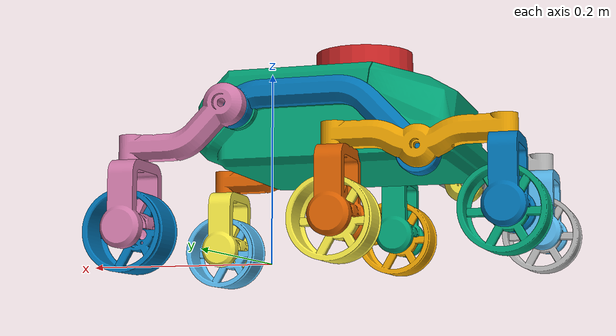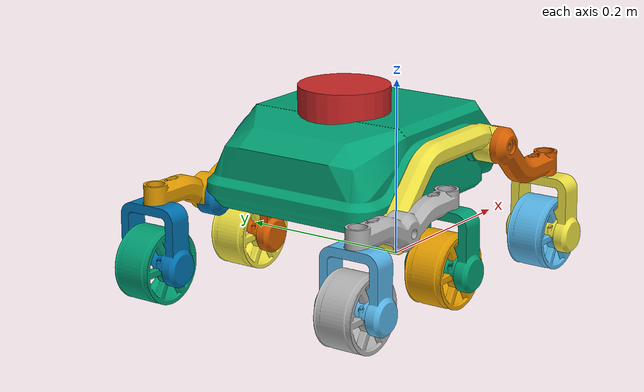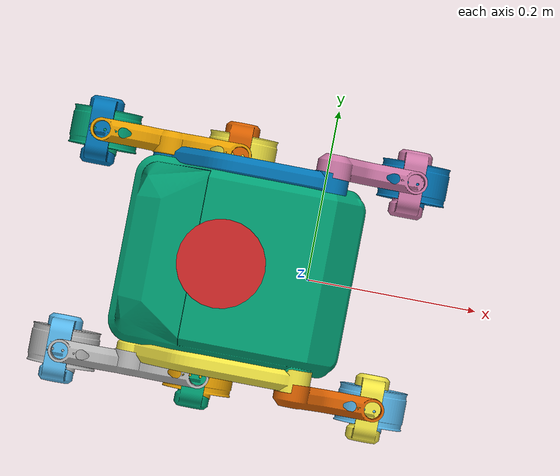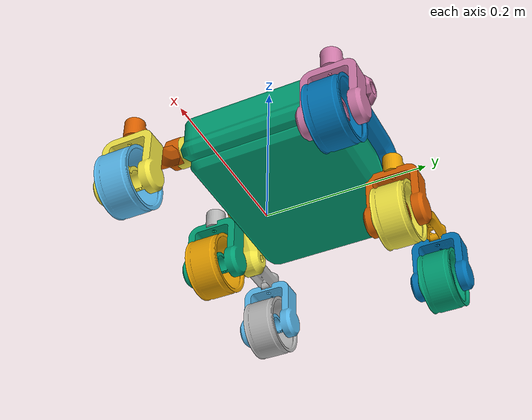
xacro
<?xml version="1.0"?>
<robot xmlns:xacro="http://www.ros.org/wiki/xacro" name="rover">

    <link name="base_link"></link>
    <link name="base_footprint"></link>
    <joint name="base_footprint_joint" type="fixed">
        <origin rpy="0 0 0" xyz="0 0 0"></origin>
        <parent link="base_link"></parent>
        <child link="base_footprint"></child>
    </joint>
    <link name="base_part_link">
        <inertial>
            <origin xyz="0.36858011704103055 0.12727195552741655 0.2893761824201176" rpy="0 0 0"/>
            <mass value="5.3148472840078265"/>
            <inertia ixx="0.035413" iyy="0.043631" izz="0.066908" ixy="0.000486" iyz="-0.000133" ixz="0.001263"/>
          </inertial>
        <visual>
            <origin rpy="0 0 0" xyz="0 0 0"/>
            <geometry>
                <mesh filename="package://rover_description/meshes/body_rover.stl" scale="0.001 0.001 0.001"></mesh>
            </geometry>
        </visual>
        <collision>
            <origin rpy="0 0 0" xyz="0 0 0.5"/>
            <geometry>
                <mesh filename="package://rover_description/meshes/body_rover.stl" scale="0.001 0.001 0.001"></mesh>
            </geometry>
        </collision>

    </link>

    <link name="left_leg_link">
        <inertial>
            <origin xyz="0.0940898084139219 0.012814069160764302 -0.012373797524457275" rpy="0 0 0"/>
            <mass value="0.6560655147003178"/>
            <inertia ixx="0.00059" iyy="0.004256" izz="0.003752" ixy="-2e-06" iyz="6e-06" ixz="0.001033"/>
          </inertial>
        <visual>
            <origin rpy="0 0 0" xyz="-0.261 -0.010 -0.120"></origin>
            <geometry>
                <mesh filename="package://rover_description/meshes/leg_1.stl" scale="0.001 0.001 0.001"></mesh>
            </geometry>
        </visual>
        <collision>
            <origin rpy="0 0 0" xyz="-0.261 -0.010 -0.120"></origin>
            <geometry>
                <mesh filename="package://rover_description/meshes/leg_1.stl" scale="0.001 0.001 0.001"></mesh>
            </geometry>
        </collision>
    </link>

    <link name="right_leg_link">
        <inertial>
            <origin xyz="0.09408981018832419 -0.012814870490642113 -0.012373814218106793" rpy="0 0 0"/>
            <mass value="0.6560656136558927"/>
            <inertia ixx="0.00059" iyy="0.004256" izz="0.003752" ixy="2e-06" iyz="-6e-06" ixz="0.001033"/>
          </inertial>
        <visual>
            <origin rpy="0 0 0" xyz="-0.261 -0.010 -0.120"></origin>
            <geometry>
                <mesh filename="package://rover_description/meshes/leg_1.stl" scale="0.001 -0.001 0.001"></mesh>
            </geometry>
        </visual>
        <collision>
            <origin rpy="0 0 0" xyz="-0.261 -0.010 -0.120"></origin>
            <geometry>
                <mesh filename="package://rover_description/meshes/leg_1.stl" scale="0.001 -0.001 0.001"></mesh>
            </geometry>
        </collision>
    </link>

    <link name="left_rocker_link">
        <inertial>
            <origin xyz="-0.06571336847368092 -0.013275152182515076 -0.055118178975015475" rpy="0 0 0"/>
            <mass value="0.8937260483050995"/>
            <inertia ixx="0.002073" iyy="0.003258" izz="0.001843" ixy="-2.3e-05" iyz="-7.1e-05" ixz="-0.001236"/>
        </inertial>
        <visual>
            <origin rpy="0 0 0" xyz="-0.220 0.025 -0.120"></origin>
            <geometry>
                <mesh filename="package://rover_description/meshes/rocker_1.stl" scale="0.001 0.001 0.001"></mesh>
            </geometry>
        </visual>
        <collision>
            <origin rpy="0 0 0" xyz="-0.220 0.025 -0.120"></origin>
            <geometry>
                <mesh filename="package://rover_description/meshes/rocker_1.stl" scale="0.001 0.001 0.001"></mesh>
            </geometry>
        </collision>
    </link>

    <link name="right_rocker_link">
        <inertial>
            <origin xyz="-0.0656809601110295 0.013042069644830123 -0.054335275342790645" rpy="0 0 0"/>
            <mass value="0.9511150507226518"/>
            <inertia ixx="0.002083" iyy="0.003269" izz="0.001848" ixy="1.6e-05" iyz="-3.7e-05" ixz="-0.001236"/>
          </inertial>
        <visual>
            <origin rpy="0 0 0" xyz="-0.220 -0.025 -0.120"></origin>
            <geometry>
                <mesh filename="package://rover_description/meshes/rocker_1.stl" scale="0.001 -0.001 0.001"></mesh>
            </geometry>
        </visual>
        <collision>
            <origin rpy="0 0 0" xyz="-0.220 -0.025 -0.120"></origin>
            <geometry>
                <mesh filename="package://rover_description/meshes/rocker_1.stl" scale="0.001 -0.001 0.001"></mesh>
            </geometry>
        </collision>
    </link>

    <link name="left_boogie_link">
        <inertial>
            <origin xyz="-2.773434771169425e-05 0.01378851335933029 -0.019093045660989794" rpy="0 0 0"/>
            <mass value="1.4914158227201482"/>
            <inertia ixx="0.002319" iyy="0.009171" izz="0.00813" ixy="-7e-06" iyz="-0.000106" ixz="6e-06"/>
          </inertial>
        <visual>
            <origin rpy="0 0 0" xyz="-0.080 0.000 -0.070"></origin>
            <geometry>
                <mesh filename="package://rover_description/meshes/boogie_1.stl" scale="0.001 0.001 0.001"></mesh>
            </geometry>
        </visual>
        <collision>
            <origin rpy="0 0 0" xyz="-0.080 0.000 -0.070"></origin>
            <geometry>
                <mesh filename="package://rover_description/meshes/boogie_1.stl" scale="0.001 0.001 0.001"></mesh>
            </geometry>
        </collision>
    </link>

    <link name="right_boogie_link">
        <inertial>
            <origin xyz="8.210657408652677e-05 -0.013101623219513326 -0.01912358611502865" rpy="0 0 0"/>
            <mass value="1.4914778130132003"/>
            <inertia ixx="0.00232" iyy="0.009173" izz="0.008131" ixy="0.0" iyz="-0.000101" ixz="-1e-06"/>
          </inertial>
        <visual>
            <origin rpy="0 0 0" xyz="-0.080 0.000 -0.070"></origin>
            <geometry>
                <mesh filename="package://rover_description/meshes/boogie_1.stl" scale="0.001 -0.001 0.001"></mesh>
            </geometry>
        </visual>
        <collision>
            <origin rpy="0 0 0" xyz="-0.080 0.000 -0.070"></origin>
            <geometry>
                <mesh filename="package://rover_description/meshes/boogie_1.stl" scale="0.001 -0.001 0.001"></mesh>
            </geometry>
        </collision>
    </link>

    <link name="u_joint_1_link">
        <inertial>
            <origin xyz="8.210657408652677e-05 -0.013101623219513326 -0.01912358611502865" rpy="0 0 0"/>
            <mass value="1.4914778130132003"/>
            <inertia ixx="0.00232" iyy="0.009173" izz="0.008131" ixy="0.0" iyz="-0.000101" ixz="-1e-06"/>
          </inertial>
        <visual>
            <origin rpy="0 0 0" xyz="-0.175 0.239 -0.110"></origin>
            <geometry>
                <mesh filename="package://rover_description/meshes/u_joint.stl" scale="0.001 0.001 0.001"></mesh>
            </geometry>
        </visual>
        <collision>
            <origin rpy="0 0 0" xyz="-0.175 0.239 -0.110"></origin>
            <geometry>
                <mesh filename="package://rover_description/meshes/u_joint.stl" scale="0.001 0.001 0.001"></mesh>
            </geometry>
        </collision>
    </link>

    <link name="u_joint_2_link">
        <inertial>
            <origin xyz="8.210657408652677e-05 -0.013101623219513326 -0.01912358611502865" rpy="0 0 0"/>
            <mass value="1.4914778130132003"/>
            <inertia ixx="0.00232" iyy="0.009173" izz="0.008131" ixy="0.0" iyz="-0.000101" ixz="-1e-06"/>
          </inertial>
        <visual>
            <origin rpy="0 0 0" xyz="-0.175 0.239 -0.110"></origin>
            <geometry>
                <mesh filename="package://rover_description/meshes/u_joint.stl" scale="0.001 0.001 0.001"></mesh>
            </geometry>
        </visual>
        <collision>
            <origin rpy="0 0 0" xyz="-0.175 0.239 -0.110"></origin>
            <geometry>
                <mesh filename="package://rover_description/meshes/u_joint.stl" scale="0.001 0.001 0.001"></mesh>
            </geometry>
        </collision>
    </link>

    <link name="u_joint_3_link">
        <inertial>
            <origin xyz="8.210657408652677e-05 -0.013101623219513326 -0.01912358611502865" rpy="0 0 0"/>
            <mass value="1.4914778130132003"/>
            <inertia ixx="0.00232" iyy="0.009173" izz="0.008131" ixy="0.0" iyz="-0.000101" ixz="-1e-06"/>
          </inertial>
        <visual>
            <origin rpy="0 0 0" xyz="-0.175 0.239 -0.110"></origin>
            <geometry>
                <mesh filename="package://rover_description/meshes/u_joint.stl" scale="0.001 0.001 0.001"></mesh>
            </geometry>
        </visual>
        <collision>
            <origin rpy="0 0 0" xyz="-0.175 0.239 -0.110"></origin>
            <geometry>
                <mesh filename="package://rover_description/meshes/u_joint.stl" scale="0.001 0.001 0.001"></mesh>
            </geometry>
        </collision>
    </link>

    <link name="u_joint_4_link">
        <inertial>
            <origin xyz="8.210657408652677e-05 -0.013101623219513326 -0.01912358611502865" rpy="0 0 0"/>
            <mass value="1.4914778130132003"/>
            <inertia ixx="0.00232" iyy="0.009173" izz="0.008131" ixy="0.0" iyz="-0.000101" ixz="-1e-06"/>
          </inertial>
        <visual>
            <origin rpy="0 0 0" xyz="-0.175 0.239 -0.110"></origin>
            <geometry>
                <mesh filename="package://rover_description/meshes/u_joint.stl" scale="0.001 0.001 0.001"></mesh>
            </geometry>
        </visual>
        <collision>
            <origin rpy="0 0 0" xyz="-0.175 0.239 -0.110"></origin>
            <geometry>
                <mesh filename="package://rover_description/meshes/u_joint.stl" scale="0.001 0.001 0.001"></mesh>
            </geometry>
        </collision>
    </link>

    <link name="u_joint_5_link">
        <inertial>
            <origin xyz="8.210657408652677e-05 -0.013101623219513326 -0.01912358611502865" rpy="0 0 0"/>
            <mass value="1.4914778130132003"/>
            <inertia ixx="0.00232" iyy="0.009173" izz="0.008131" ixy="0.0" iyz="-0.000101" ixz="-1e-06"/>
          </inertial>
        <visual>
            <origin rpy="0 0 0" xyz="-0.175 0.239 -0.110"></origin>
            <geometry>
                <mesh filename="package://rover_description/meshes/u_joint.stl" scale="0.001 0.001 0.001"></mesh>
            </geometry>
        </visual>
        <collision>
            <origin rpy="0 0 0" xyz="-0.175 0.239 -0.110"></origin>
            <geometry>
                <mesh filename="package://rover_description/meshes/u_joint.stl" scale="0.001 0.001 0.001"></mesh>
            </geometry>
        </collision>
    </link>

    <link name="u_joint_6_link">
        <inertial>
            <origin xyz="8.210657408652677e-05 -0.013101623219513326 -0.01912358611502865" rpy="0 0 0"/>
            <mass value="1.4914778130132003"/>
            <inertia ixx="0.00232" iyy="0.009173" izz="0.008131" ixy="0.0" iyz="-0.000101" ixz="-1e-06"/>
          </inertial>
        <visual>
            <origin rpy="0 0 0" xyz="-0.175 0.239 -0.110"></origin>
            <geometry>
                <mesh filename="package://rover_description/meshes/u_joint.stl" scale="0.001 0.001 0.001"></mesh>
            </geometry>
        </visual>
        <collision>
            <origin rpy="0 0 0" xyz="-0.175 0.239 -0.110"></origin>
            <geometry>
                <mesh filename="package://rover_description/meshes/u_joint.stl" scale="0.001 0.001 0.001"></mesh>
            </geometry>
        </collision>
    </link>

    <link name="wheel_1_link">
        <inertial>
            <origin xyz="-1.0959477414473895e-07 -0.035645342277154296 3.2835295757371874e-07" rpy="0 0 0"/>
            <mass value="0.33507957881433253"/>
            <inertia ixx="0.000264" iyy="0.000363" izz="0.000264" ixy="-0.0" iyz="0.0" ixz="-0.0"/>
          </inertial>
        <visual>
            <origin rpy="0 0 0" xyz="0 0 0"></origin>
            <geometry>
                <mesh filename="package://rover_description/meshes/wheel.stl" scale="0.001 -0.001 0.001"></mesh>
            </geometry>
        </visual>
        <collision>
            <origin rpy="0 0 0" xyz="0 0 0"></origin>
            <geometry>
                <mesh filename="package://rover_description/meshes/wheel.stl" scale="0.001 -0.001 0.001"></mesh>
            </geometry>
            <gazebo>
                <surface>
                    <friction>
                        <ode>
                            <mu>5.0</mu>      <!-- Friction coefficient -->
                            <mu2>5.0</mu2>    <!-- Lateral friction coefficient -->
                        </ode>
                    </friction>
                    <bounce>
                        <restitution_coefficient>0.0</restitution_coefficient>
                        <threshold>1000.0</threshold>
                    </bounce>
                    <contact>
                        <ode>
                            <kp>100000.0</kp> <!-- Stiffness parameter -->
                            <kd>1.0</kd>      <!-- Damping parameter -->
                        </ode>
                    </contact>
                </surface>
            </gazebo>
        </collision>
    </link>

    <link name="wheel_2_link">
        <inertial>
            <origin xyz="-1.0959477414473895e-07 -0.035645342277154296 3.2835295757371874e-07" rpy="0 0 0"/>
            <mass value="0.33507957881433253"/>
            <inertia ixx="0.000264" iyy="0.000363" izz="0.000264" ixy="-0.0" iyz="0.0" ixz="-0.0"/>
          </inertial>
        <visual>
            <origin rpy="0 0 0" xyz="0 0 0"></origin>
            <geometry>
                <mesh filename="package://rover_description/meshes/wheel.stl" scale="0.001 -0.001 0.001"></mesh>
            </geometry>
        </visual>
        <collision>
            <origin rpy="0 0 0" xyz="0 0 0"></origin>
            <geometry>
                <mesh filename="package://rover_description/meshes/wheel.stl" scale="0.001 -0.001 0.001"></mesh>
            </geometry>
            <gazebo>
                <surface>
                    <friction>
                        <ode>
                            <mu>5.0</mu>      <!-- Friction coefficient -->
                            <mu2>5.0</mu2>    <!-- Lateral friction coefficient -->
                        </ode>
                    </friction>
                    <bounce>
                        <restitution_coefficient>0.0</restitution_coefficient>
                        <threshold>1000.0</threshold>
                    </bounce>
                    <contact>
                        <ode>
                            <kp>100000.0</kp> <!-- Stiffness parameter -->
                            <kd>1.0</kd>      <!-- Damping parameter -->
                        </ode>
                    </contact>
                </surface>
            </gazebo>
        </collision>
    </link>

    <link name="wheel_3_link">
        <inertial>
            <origin xyz="-1.0959477414473895e-07 -0.035645342277154296 3.2835295757371874e-07" rpy="0 0 0"/>
            <mass value="0.33507957881433253"/>
            <inertia ixx="0.000264" iyy="0.000363" izz="0.000264" ixy="-0.0" iyz="0.0" ixz="-0.0"/>
          </inertial>
        <visual>
            <origin rpy="0 0 0" xyz="0 0 0"></origin>
            <geometry>
                <mesh filename="package://rover_description/meshes/wheel.stl" scale="0.001 -0.001 0.001"></mesh>
            </geometry>
        </visual>
        <collision>
            <origin rpy="0 0 0" xyz="0 0 0"></origin>
            <geometry>
                <mesh filename="package://rover_description/meshes/wheel.stl" scale="0.001 -0.001 0.001"></mesh>
            </geometry>
            <gazebo>
                <surface>
                    <friction>
                        <ode>
                            <mu>5.0</mu>      <!-- Friction coefficient -->
                            <mu2>5.0</mu2>    <!-- Lateral friction coefficient -->
                        </ode>
                    </friction>
                    <bounce>
                        <restitution_coefficient>0.0</restitution_coefficient>
                        <threshold>1000.0</threshold>
                    </bounce>
                    <contact>
                        <ode>
                            <kp>100000.0</kp> <!-- Stiffness parameter -->
                            <kd>1.0</kd>      <!-- Damping parameter -->
                        </ode>
                    </contact>
                </surface>
            </gazebo>
        </collision>
    </link>

    <link name="wheel_4_link">
        <inertial>
            <origin xyz="-1.0959477414473895e-07 -0.035645342277154296 3.2835295757371874e-07" rpy="0 0 0"/>
            <mass value="0.33507957881433253"/>
            <inertia ixx="0.000264" iyy="0.000363" izz="0.000264" ixy="-0.0" iyz="0.0" ixz="-0.0"/>
          </inertial>
        <visual>
            <origin rpy="0 0 0" xyz="0 0 0"></origin>
            <geometry>
                <mesh filename="package://rover_description/meshes/wheel.stl" scale="0.001 -0.001 0.001"></mesh>
            </geometry>
        </visual>
        <collision>
            <origin rpy="0 0 0" xyz="0 0 0"></origin>
            <geometry>
                <mesh filename="package://rover_description/meshes/wheel.stl" scale="0.001 -0.001 0.001"></mesh>
            </geometry>
        </collision>
        <gazebo>
            <surface>
                <friction>
                    <ode>
                        <mu>5.0</mu>      <!-- Friction coefficient -->
                        <mu2>5.0</mu2>    <!-- Lateral friction coefficient -->
                    </ode>
                </friction>
                <bounce>
                    <restitution_coefficient>0.0</restitution_coefficient>
                    <threshold>1000.0</threshold>
                </bounce>
                <contact>
                    <ode>
                        <kp>100000.0</kp> <!-- Stiffness parameter -->
                        <kd>1.0</kd>      <!-- Damping parameter -->
                    </ode>
                </contact>
            </surface>
        </gazebo>
    </link>

    <link name="wheel_5_link">
        <inertial>
            <origin xyz="-1.0959477414473895e-07 -0.035645342277154296 3.2835295757371874e-07" rpy="0 0 0"/>
            <mass value="0.33507957881433253"/>
            <inertia ixx="0.000264" iyy="0.000363" izz="0.000264" ixy="-0.0" iyz="0.0" ixz="-0.0"/>
          </inertial>
        <visual>
            <origin rpy="0 0 0" xyz="0 0 0"></origin>
            <geometry>
                <mesh filename="package://rover_description/meshes/wheel.stl" scale="0.001 -0.001 0.001"></mesh>
            </geometry>
        </visual>
        <collision>
            <origin rpy="0 0 0" xyz="0 0 0"></origin>
            <geometry>
                <mesh filename="package://rover_description/meshes/wheel.stl" scale="0.001 -0.001 0.001"></mesh>
            </geometry>
            <gazebo>
                <surface>
                    <friction>
                        <ode>
                            <mu>5.0</mu>      <!-- Friction coefficient -->
                            <mu2>5.0</mu2>    <!-- Lateral friction coefficient -->
                        </ode>
                    </friction>
                    <bounce>
                        <restitution_coefficient>0.0</restitution_coefficient>
                        <threshold>1000.0</threshold>
                    </bounce>
                    <contact>
                        <ode>
                            <kp>100000.0</kp> <!-- Stiffness parameter -->
                            <kd>1.0</kd>      <!-- Damping parameter -->
                        </ode>
                    </contact>
                </surface>
            </gazebo>
        </collision>
    </link>

    <link name="wheel_6_link">
        <inertial>
            <origin xyz="-1.0959477414473895e-07 -0.035645342277154296 3.2835295757371874e-07" rpy="0 0 0"/>
            <mass value="0.33507957881433253"/>
            <inertia ixx="0.000264" iyy="0.000363" izz="0.000264" ixy="-0.0" iyz="0.0" ixz="-0.0"/>
          </inertial>
        <visual>
            <origin rpy="0 0 0" xyz="0 0 0"></origin>
            <geometry>
                <mesh filename="package://rover_description/meshes/wheel.stl" scale="0.001 -0.001 0.001"></mesh>
            </geometry>
        </visual>
        <collision>
            <origin rpy="0 0 0" xyz="0 0 0"></origin>
            <geometry>
                <mesh filename="package://rover_description/meshes/wheel.stl" scale="0.001 -0.001 0.001"></mesh>
            </geometry>
        </collision>
        <gazebo>
            <surface>
                <friction>
                    <ode>
                        <mu>5.0</mu>      <!-- Friction coefficient -->
                        <mu2>5.0</mu2>    <!-- Lateral friction coefficient -->
                    </ode>
                </friction>
                <bounce>
                    <restitution_coefficient>0.0</restitution_coefficient>
                    <threshold>1000.0</threshold>
                </bounce>
                <contact>
                    <ode>
                        <kp>100000.0</kp> <!-- Stiffness parameter -->
                        <kd>1.0</kd>      <!-- Damping parameter -->
                    </ode>
                </contact>
            </surface>
        </gazebo>
    </link>

    <joint name="base_part_link_joint" type="fixed">
        <origin rpy="0 0 0" xyz="-0.183 -0.075 0.027"></origin>
        <parent link="base_link"></parent>
        <child link="base_part_link"></child>
    </joint>

    <joint name="base_part_left_leg_joint" type="fixed">

        <origin rpy="0 0 0" xyz="0 -0.105 0.145"></origin>
        <parent link="base_link"></parent>
        <child link="left_leg_link"></child>
    </joint>

    <joint name="base_part_right_leg_joint" type="fixed">

        <origin rpy="0 0 0" xyz="0 0.120 0.145"></origin>
        <parent link="base_link"></parent>
        <child link="right_leg_link"></child>
    </joint>

    <joint name="left_rocker_joint" type="fixed">

        <origin rpy="0 0 0" xyz="0 -0.129 0.145"></origin>
        <parent link="base_link"></parent>
        <child link="left_rocker_link"></child>
    </joint>

    <joint name="right_rocker_joint" type="fixed">
        <origin rpy="0 0 0" xyz="0 0.129 0.145"></origin>
        <parent link="base_link"></parent>
        <child link="right_rocker_link"></child>
    </joint>

    <joint name="left_boogie_joint" type="fixed">

        <origin rpy="0 0 0" xyz="-0.183 -0.027 -0.045"></origin>
        <parent link="left_leg_link"></parent>
        <child link="left_boogie_link"></child>
    </joint>

    <joint name="right_boogie_joint" type="fixed">

        <origin rpy="0 0 0" xyz="-0.183 0.005 -0.045"></origin>
        <parent link="right_leg_link"></parent>
        <child link="right_boogie_link"></child>
    </joint>

    <joint name="u_joint_1_joint" type="fixed">
        <origin rpy="0 0 0" xyz="-0.080 0 0"></origin>
        <parent link="left_boogie_link"></parent>
        <child link="u_joint_1_link"></child>
    </joint>

    <joint name="u_joint_2_joint" type="fixed">
        <origin rpy="0 0 0" xyz="0.080 0 0"></origin>
        <parent link="left_boogie_link"></parent>
        <child link="u_joint_2_link"></child>
    </joint>

    <joint name="u_joint_3_joint" type="fixed">
        <origin rpy="0 0 0" xyz="0.100 -0.005 -0.056"></origin>
        <parent link="left_rocker_link"></parent>
        <child link="u_joint_3_link"></child>
    </joint>

    <joint name="u_joint_4_joint" type="fixed">
        <origin rpy="0 0 0" xyz="-0.080 0 0"></origin>
        <parent link="right_boogie_link"></parent>
        <child link="u_joint_4_link"></child>
    </joint>

    <joint name="u_joint_5_joint" type="fixed">
        <origin rpy="0 0 0" xyz="0.080 0 -0.004"></origin>
        <parent link="right_boogie_link"></parent>
        <child link="u_joint_5_link"></child>
    </joint>

    <joint name="u_joint_6_joint" type="fixed">
        <origin rpy="0 0 0" xyz="0.100 0.002 -0.056"></origin>
        <parent link="right_rocker_link"></parent>
        <child link="u_joint_6_link"></child>
    </joint>

    <joint name="wheel_1_joint" type="continuous">
        <axis xyz="0 -1 0"></axis>
        <origin rpy="0 0 0" xyz="0 -0.019 -0.065"></origin>
        <parent link="u_joint_1_link"></parent>
        <child link="wheel_1_link"></child>
        <dynamics damping="0.1" friction="1.0"/>
        <velocity>0.0</velocity> <!-- Ensure no initial velocity -->
    </joint>

    <joint name="wheel_2_joint" type="continuous">
        <axis xyz="0 1 0"></axis>
        <origin rpy="0 0 0" xyz="0 -0.019 -0.065"></origin>
        <parent link="u_joint_2_link"></parent>
        <child link="wheel_2_link"></child>
        <dynamics damping="0.1" friction="1.0"/>
        <velocity>0.0</velocity> <!-- Ensure no initial velocity -->
    </joint>

    <joint name="wheel_3_joint" type="continuous">
        <axis xyz="0 1 0"></axis>
        <origin rpy="0 0 0" xyz="0 -0.019 -0.065"></origin>
        <parent link="u_joint_3_link"></parent>
        <child link="wheel_3_link"></child>
        <dynamics damping="0.1" friction="1.0"/>
        <velocity>0.0</velocity> <!-- Ensure no initial velocity -->
    </joint>

    <joint name="wheel_4_joint" type="continuous">
        <axis xyz="0 -1 0"></axis>
        <origin rpy="0 0 0" xyz="0 -0.019 -0.065"></origin>
        <parent link="u_joint_4_link"></parent>
        <child link="wheel_4_link"></child>
        <dynamics damping="0.1" friction="1.0"/>
        <velocity>0.0</velocity> <!-- Ensure no initial velocity -->
    </joint>

    <joint name="wheel_5_joint" type="continuous">
        <axis xyz="0 1 0"></axis>
        <origin rpy="0 0 0" xyz="0 -0.019 -0.065"></origin>
        <parent link="u_joint_5_link"></parent>
        <child link="wheel_5_link"></child>
        <dynamics damping="0.1" friction="1.0"/>
        <velocity>0.0</velocity> <!-- Ensure no initial velocity -->
    </joint>

    <joint name="wheel_6_joint" type="continuous">
        <axis xyz="0 1 0"></axis>
        <origin rpy="0 0 0" xyz="0 -0.019 -0.065"></origin>
        <parent link="u_joint_6_link"></parent>
        <child link="wheel_6_link"></child>
        <dynamics damping="0.1" friction="1.0"/>
        <velocity>0.0</velocity> <!-- Ensure no initial velocity -->
    </joint>

  <!-- LIDAR -->
  <xacro:macro name="inertial_cylinder" params="mass length radius *origin">
    <inertial>
        <xacro:insert_block name="origin"/>
        <mass value="${mass}" />
        <inertia ixx="${(1/12) * mass * (3*radius*radius + length*length)}" ixy="0.0" ixz="0.0"
                iyy="${(1/12) * mass * (3*radius*radius + length*length)}" iyz="0.0"
                izz="${(1/2) * mass * (radius*radius)}" />
    </inertial>
  </xacro:macro>

  <joint name="laser_joint" type="fixed">
      <parent link="base_link"/>
      <child link="laser_frame"/>
      <origin xyz="-0.1 0 0.195" rpy="0 0 0"/>
    </joint>

    <link name="laser_frame">
        <visual>
            <geometry>
                <cylinder radius="0.05" length="0.04"/>
            </geometry>
        </visual>
        <visual>
            <origin xyz="0 0 -0.05"/>
            <geometry>
                <cylinder radius="0.01" length="0.1"/>
            </geometry>
        </visual>
        <collision>
            <geometry>
                <cylinder radius="0.05" length="0.04"/>
            </geometry>
        </collision>
        <xacro:inertial_cylinder mass="0.1" length="0.04" radius="0.05">
            <origin xyz="0 0 0" rpy="0 0 0"/>
        </xacro:inertial_cylinder>
    </link>

    <gazebo reference="laser_frame">
        <material>Gazebo/Red</material>
        <sensor name="laser" type="ray">
            <pose> 0 0 0 0 0 0 </pose>
            <visualize>true</visualize>
            <update_rate>50</update_rate>
            <ray>
                <scan>
                    <horizontal>
                        <samples>360</samples>
                        <min_angle>-3.14</min_angle>
                        <max_angle>3.14</max_angle>
                    </horizontal>
                </scan>
                <range>
                    <min>0.3</min>
                    <max>10</max>
                </range>
            </ray>
            <plugin name="laser_controller" filename="libgazebo_ros_ray_sensor.so">
                <ros>
                    <argument>~/out:=scan</argument>
                </ros>
                <output_type>sensor_msgs/LaserScan</output_type>
                <frame_name>laser_frame</frame_name>
            </plugin>
        </sensor>
    </gazebo>

    <!-- SIMPLE CONTROLLER-->
    <gazebo>
        <plugin name="diff_drive" filename="libgazebo_ros_diff_drive.so">
            <left_joint>wheel_1_joint</left_joint>
            <right_joint>wheel_4_joint</right_joint>

            <wheel_separation>0.309</wheel_separation>
            <wheel_diameter>0.08</wheel_diameter>

            <max_wheel_torque>200</max_wheel_torque>
            <max_wheel_acceleration>10.0</max_wheel_acceleration>

            <command_topic>cmd_vel</command_topic>

            <publish_odom>true</publish_odom>
            <publish_odom_tf>true</publish_odom_tf>
            <publish_wheel_tf>true</publish_wheel_tf>

            <odometry_topic>odom</odometry_topic>

            <odometry_frame>odom</odometry_frame>
            <robot_base_frame>base_link</robot_base_frame>

        </plugin>
      </gazebo>

      <!-- ROS2 CONTROL-->

      <ros2_control name="GazeboSystem" type="system">
        <hardware>
            <plugin>gazebo_ros2_control/GazeboSystem</plugin>
        </hardware>
        <joint name="wheel_1_joint">
            <command_interface name="velocity">
                <param name="min">-20</param>
                <param name="max">20</param>
            </command_interface>
            <state_interface name="velocity"></state_interface>
            <state_interface name="position"></state_interface>
        </joint>
        <joint name="wheel_4_joint">
            <command_interface name="velocity">
                <param name="min">-20</param>
                <param name="max">20</param>
            </command_interface>
            <state_interface name="velocity"></state_interface>
            <state_interface name="position"></state_interface>
        </joint>
        <joint name="wheel_3_joint">
            <command_interface name="velocity">
                <param name="min">-20</param>
                <param name="max">20</param>
            </command_interface>
            <state_interface name="velocity"></state_interface>
            <state_interface name="position"></state_interface>
        </joint>
        <joint name="wheel_6_joint">
            <command_interface name="velocity">
                <param name="min">-20</param>
                <param name="max">20</param>
            </command_interface>
            <state_interface name="velocity"></state_interface>
            <state_interface name="position"></state_interface>
        </joint>
      </ros2_control>

      <gazebo>
        <plugin name="gazebo_ros2_control" filename="libgazebo_ros2_control.so">
            <parameters>/home/saieswaram/gujcost_rover/install/rover_description/share/rover_description/config/my_controllers.yaml</parameters>
        </plugin>
      </gazebo>

</robot>
